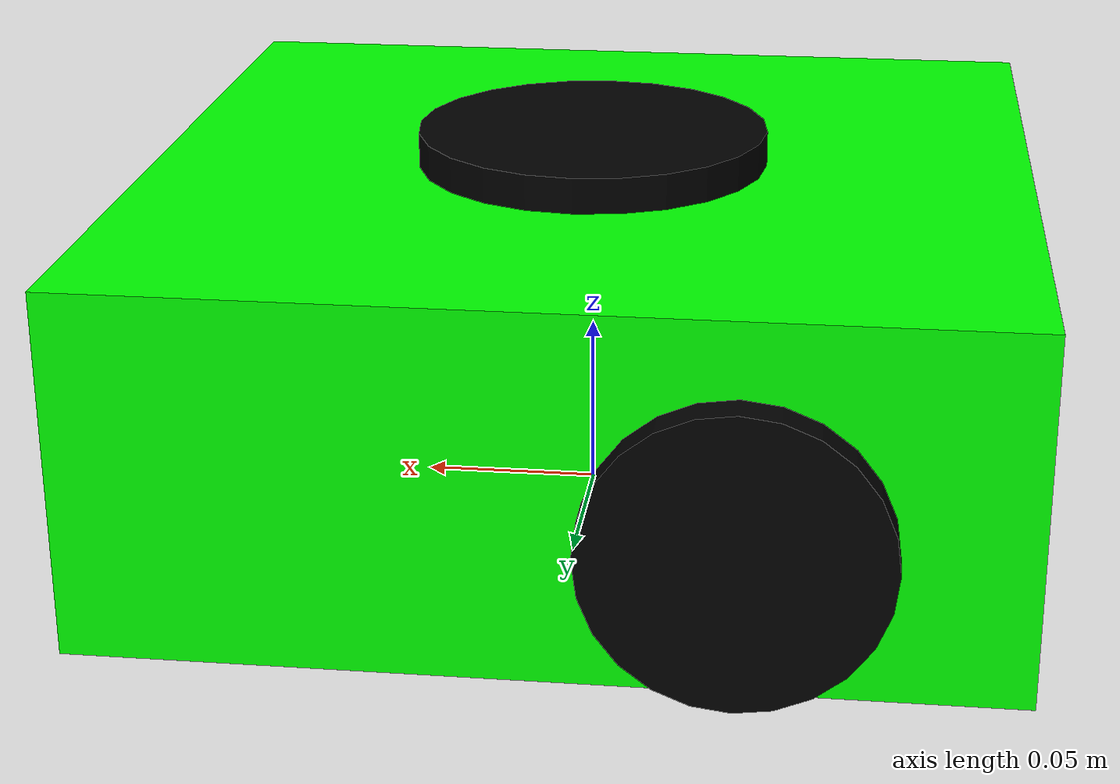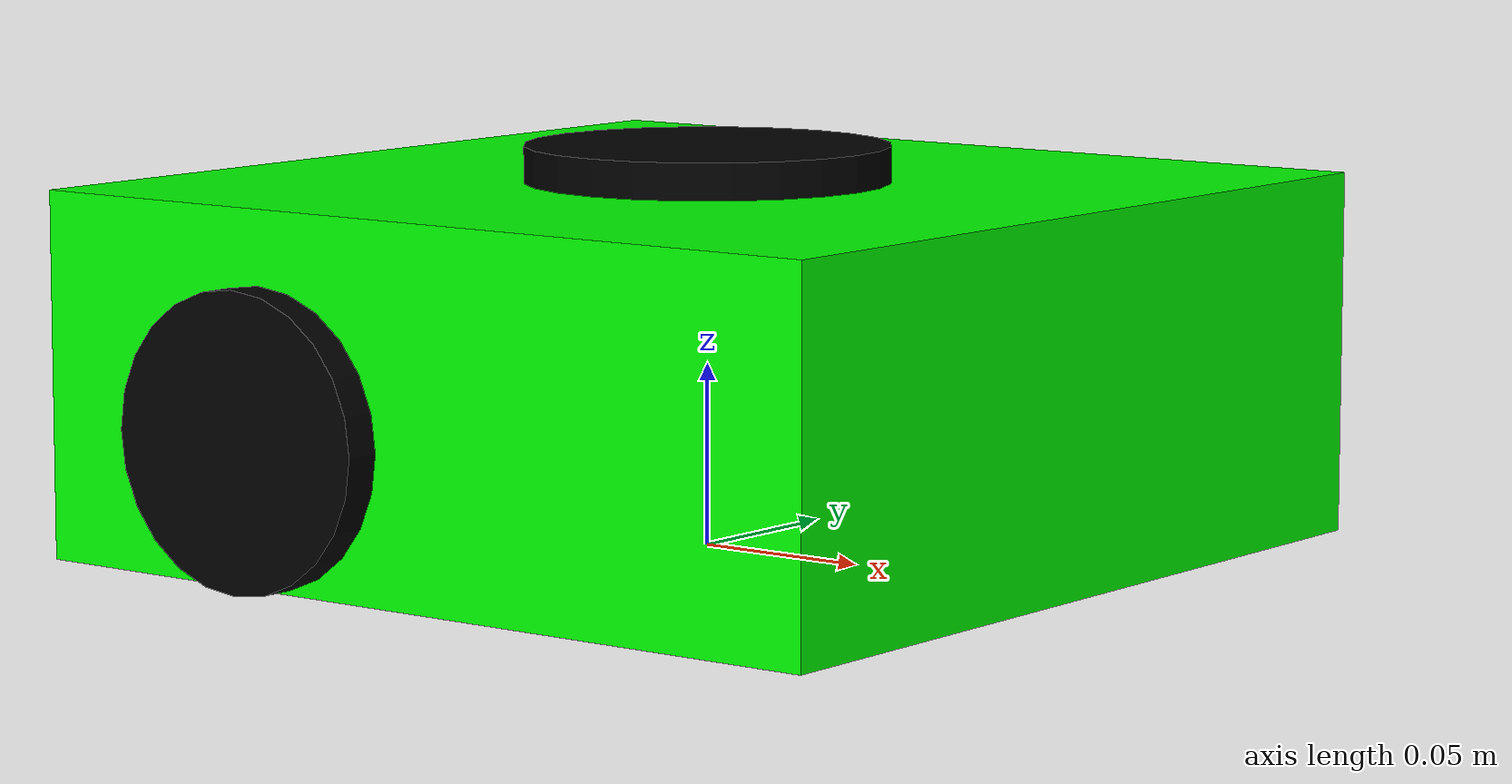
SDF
<sdf version='1.11'>
  <model name='ball_bot'>
    <link name='base_footprint'>
      <inertial>
        <pose>0 0 0.050000000000000003 0 0 0</pose>
        <mass>1</mass>
        <inertia>
          <ixx>0.02</ixx>
          <ixy>0</ixy>
          <ixz>0</ixz>
          <iyy>0.02</iyy>
          <iyz>0</iyz>
          <izz>0.02</izz>
        </inertia>
      </inertial>
      <collision name='base_footprint_fixed_joint_lump__base_link_collision'>
        <pose>0 0 0.050000000000000003 0 0 0</pose>
        <geometry>
          <box>
            <size>0.25 0.25 0.10000000000000001</size>
          </box>
        </geometry>
      </collision>
      <collision name='base_footprint_fixed_joint_lump__front_caster_collision_1'>
        <pose>0.089999999999999997 0 0.025000000000000001 0 0 0</pose>
        <geometry>
          <sphere>
            <radius>0.025000000000000001</radius>
          </sphere>
        </geometry>
      </collision>
      <visual name='base_footprint_fixed_joint_lump__base_link_visual'>
        <pose>0 0 0.050000000000000003 0 0 0</pose>
        <geometry>
          <box>
            <size>0.25 0.25 0.10000000000000001</size>
          </box>
        </geometry>
        <material>
          <diffuse>0 1 0 1</diffuse>
          <ambient>0 1 0 1</ambient>
        </material>
      </visual>
      <visual name='base_footprint_fixed_joint_lump__front_caster_visual_1'>
        <pose>0.089999999999999997 0 0.025000000000000001 0 0 0</pose>
        <geometry>
          <sphere>
            <radius>0.025000000000000001</radius>
          </sphere>
        </geometry>
        <material>
          <diffuse>0.875 0.875 0.875 1</diffuse>
          <ambient>0.875 0.875 0.875 1</ambient>
        </material>
      </visual>
      <visual name='base_footprint_fixed_joint_lump__lidar_link_visual_2'>
        <pose>0 0 0.10000000000000001 0 0 0</pose>
        <geometry>
          <cylinder>
            <length>0.02</length>
            <radius>0.050000000000000003</radius>
          </cylinder>
        </geometry>
        <material>
          <diffuse>0 0 0 1</diffuse>
          <ambient>0 0 0 1</ambient>
        </material>
      </visual>
      <sensor name='lidar_sensor' type='ray'>
        <visualize>true</visualize>
        <update_rate>20</update_rate>
        <ray>
          <scan>
            <horizontal>
              <samples>720</samples>
              <min_angle>-1.5700000000000001</min_angle>
              <max_angle>1.5700000000000001</max_angle>
              <resolution>1</resolution>
            </horizontal>
          </scan>
          <range>
            <min>0.10000000000000001</min>
            <max>5</max>
          </range>
        </ray>
        <plugin name='laser_plugin' filename='libgazebo_ros_ray_sensor.so'>
          <frame_name>lidar_link</frame_name>
        </plugin>
        <pose>0 0 0.10000000000000001 0 0 0</pose>
      </sensor>
    </link>
    <joint name='rear_left_wheel_joint' type='revolute'>
      <pose relative_to='base_footprint'>-0.050000000000000003 0.12 0.040000000000000001 0 0 0</pose>
      <parent>base_footprint</parent>
      <child>rear_left_wheel</child>
      <axis>
        <xyz>0 1 0</xyz>
        <limit>
          <lower>-inf</lower>
          <upper>inf</upper>
        </limit>
        <dynamics>
          <spring_reference>0</spring_reference>
          <spring_stiffness>0</spring_stiffness>
        </dynamics>
      </axis>
    </joint>
    <link name='rear_left_wheel'>
      <pose relative_to='rear_left_wheel_joint'>0 0 0 0 0 0</pose>
      <inertial>
        <pose>0 0 0 0 0 0</pose>
        <mass>0.10000000000000001</mass>
        <inertia>
          <ixx>4.7500000000000003e-05</ixx>
          <ixy>0</ixy>
          <ixz>0</ixz>
          <iyy>4.7500000000000003e-05</iyy>
          <iyz>0</iyz>
          <izz>8.0000000000000007e-05</izz>
        </inertia>
      </inertial>
      <collision name='rear_left_wheel_collision'>
        <pose>0 0 0 1.5708 0 0</pose>
        <geometry>
          <cylinder>
            <length>0.029999999999999999</length>
            <radius>0.040000000000000001</radius>
          </cylinder>
        </geometry>
      </collision>
      <visual name='rear_left_wheel_visual'>
        <pose>0 0 0 1.5708 0 0</pose>
        <geometry>
          <cylinder>
            <length>0.029999999999999999</length>
            <radius>0.040000000000000001</radius>
          </cylinder>
        </geometry>
        <material>
          <diffuse>0 0 0 1</diffuse>
          <ambient>0 0 0 1</ambient>
        </material>
      </visual>
    </link>
    <joint name='rear_right_wheel_joint' type='revolute'>
      <pose relative_to='base_footprint'>-0.050000000000000003 -0.12 0.040000000000000001 0 0 0</pose>
      <parent>base_footprint</parent>
      <child>rear_right_wheel</child>
      <axis>
        <xyz>0 1 0</xyz>
        <limit>
          <lower>-inf</lower>
          <upper>inf</upper>
        </limit>
        <dynamics>
          <spring_reference>0</spring_reference>
          <spring_stiffness>0</spring_stiffness>
        </dynamics>
      </axis>
    </joint>
    <link name='rear_right_wheel'>
      <pose relative_to='rear_right_wheel_joint'>0 0 0 0 0 0</pose>
      <inertial>
        <pose>0 0 0 0 0 0</pose>
        <mass>0.10000000000000001</mass>
        <inertia>
          <ixx>4.7500000000000003e-05</ixx>
          <ixy>0</ixy>
          <ixz>0</ixz>
          <iyy>4.7500000000000003e-05</iyy>
          <iyz>0</iyz>
          <izz>8.0000000000000007e-05</izz>
        </inertia>
      </inertial>
      <collision name='rear_right_wheel_collision'>
        <pose>0 0 0 1.5708 0 0</pose>
        <geometry>
          <cylinder>
            <length>0.029999999999999999</length>
            <radius>0.040000000000000001</radius>
          </cylinder>
        </geometry>
      </collision>
      <visual name='rear_right_wheel_visual'>
        <pose>0 0 0 1.5708 0 0</pose>
        <geometry>
          <cylinder>
            <length>0.029999999999999999</length>
            <radius>0.040000000000000001</radius>
          </cylinder>
        </geometry>
        <material>
          <diffuse>0 0 0 1</diffuse>
          <ambient>0 0 0 1</ambient>
        </material>
      </visual>
    </link>
    <plugin name='diff_drive' filename='libgazebo_ros_diff_drive.so'>
      <left_joint>rear_left_wheel_joint</left_joint>
      <right_joint>rear_right_wheel_joint</right_joint>
      <wheel_separation>0.24</wheel_separation>
      <wheel_radius>0.04</wheel_radius>
      <publish_odom>true</publish_odom>
      <publish_tf>true</publish_tf>
      <command_topic>cmd_vel</command_topic>
      <odometry_topic>odom</odometry_topic>
      <update_rate>50</update_rate>
    </plugin>
    <frame name='front_caster_joint' attached_to='base_link'>
      <pose>0.089999999999999997 0 0.025000000000000001 0 0 0</pose>
    </frame>
    <frame name='front_caster' attached_to='front_caster_joint'>
      <pose>0 0 0 0 0 0</pose>
    </frame>
    <frame name='lidar_joint' attached_to='base_link'>
      <pose>0 0 0.10000000000000001 0 0 0</pose>
    </frame>
    <frame name='lidar_link' attached_to='lidar_joint'>
      <pose>0 0 0 0 0 0</pose>
    </frame>
    <frame name='base_to_base_link' attached_to='base_footprint'>
      <pose>0 0 0 0 0 0</pose>
    </frame>
    <frame name='base_link' attached_to='base_to_base_link'>
      <pose>0 0 0 0 0 0</pose>
    </frame>
  </model>
</sdf>
